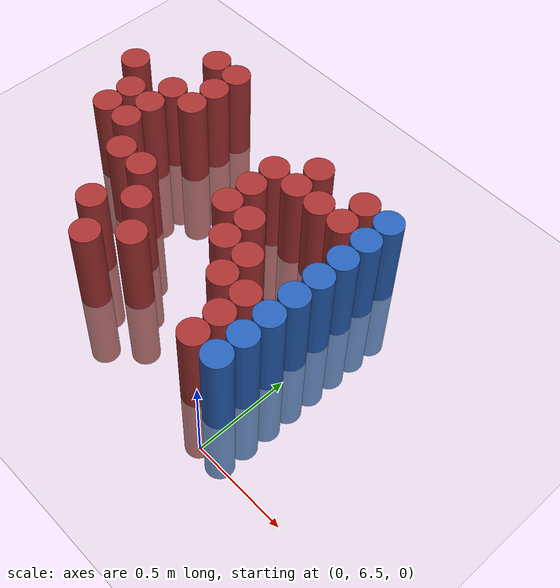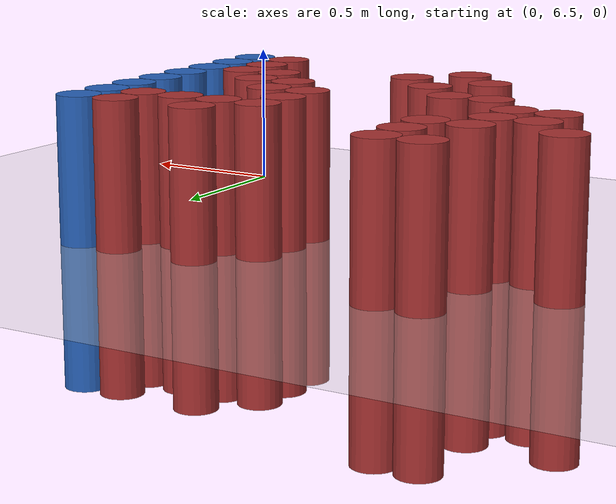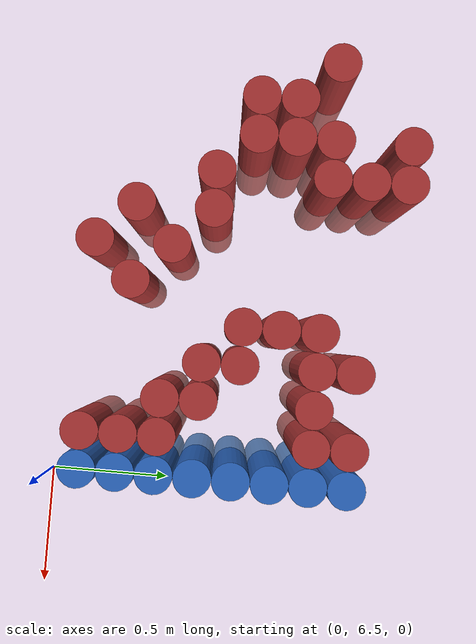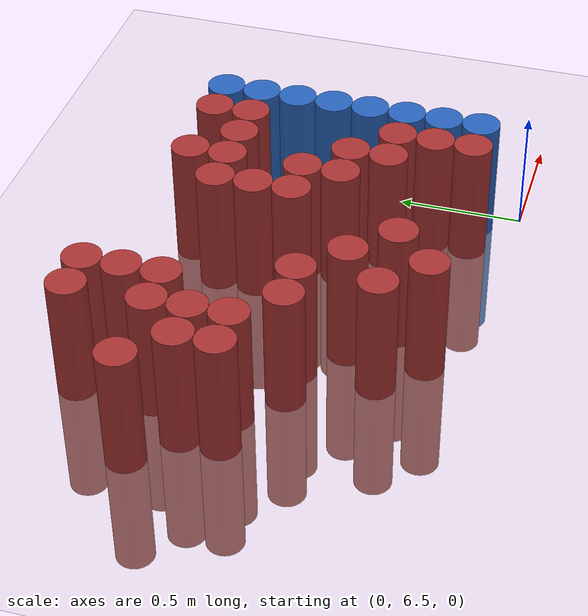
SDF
<sdf version="1.6">
 <world name="default">
  <model name="ground_plane">
   <static>1</static>
   <link name="link">
    <collision name="collision">
     <geometry><plane><normal>0 0 1</normal><size>100 100</size></plane></geometry>
     <surface><friction><ode><mu>100</mu><mu2>50</mu2></ode></friction></surface>
    </collision>
    <visual name="visual">
     <cast_shadows>0</cast_shadows>
     <geometry><plane><normal>0 0 1</normal><size>100 100</size></plane></geometry>
     <material>
      <script><uri>file://media/materials/scripts/gazebo.material</uri><name>Gazebo/Grey</name></script>
     </material>
    </visual>
   </link>
  </model>
  <model name="unit_cylinder_210">
   <static>1</static>
   <pose>-1.725000 7.575000 0.000000 0.000000 0.000000 0.000000</pose>
   <link name="link">
    <inertial>
     <mass>1</mass>
     <inertia><ixx>0.145833</ixx><ixy>0</ixy><ixz>0</ixz><iyy>0.145833</iyy><iyz>0</iyz><izz>0.125</izz></inertia>
    </inertial>
    <collision name="collision">
     <geometry><cylinder><radius>0.075000</radius><length>1</length></cylinder></geometry>
    </collision>
    <visual name="visual">
     <geometry><cylinder><radius>0.075000</radius><length>1</length></cylinder></geometry>
     <material>
      <ambient>0.648000 0.192000 0.192000 1</ambient>
      <diffuse>0.648000 0.192000 0.192000 1</diffuse>
     </material>
     <material>
      <script><name>Gazebo/Grey</name><uri>file://media/materials/scripts/gazebo.material</uri></script>
     </material>
    </visual>
    <sensor name="sensor_contact" type="contact"><contact><collision>collision</collision></contact></sensor>
   </link>
   <plugin filename="gz-sim-touchplugin-system" name="gz::sim::systems::TouchPlugin">
    <target>robot</target>
    <namespace>robot</namespace>
    <time>0.001</time>
    <enabled>true</enabled>
   </plugin>
  </model>
  <model name="unit_cylinder_217">
   <static>1</static>
   <pose>-1.575000 7.275000 0.000000 0.000000 0.000000 0.000000</pose>
   <link name="link">
    <inertial>
     <mass>1</mass>
     <inertia><ixx>0.145833</ixx><ixy>0</ixy><ixz>0</ixz><iyy>0.145833</iyy><iyz>0</iyz><izz>0.125</izz></inertia>
    </inertial>
    <collision name="collision">
     <geometry><cylinder><radius>0.075000</radius><length>1</length></cylinder></geometry>
    </collision>
    <visual name="visual">
     <geometry><cylinder><radius>0.075000</radius><length>1</length></cylinder></geometry>
     <material>
      <ambient>0.648000 0.192000 0.192000 1</ambient>
      <diffuse>0.648000 0.192000 0.192000 1</diffuse>
     </material>
     <material>
      <script><name>Gazebo/Grey</name><uri>file://media/materials/scripts/gazebo.material</uri></script>
     </material>
    </visual>
    <sensor name="sensor_contact" type="contact"><contact><collision>collision</collision></contact></sensor>
   </link>
   <plugin filename="gz-sim-touchplugin-system" name="gz::sim::systems::TouchPlugin">
    <target>robot</target>
    <namespace>robot</namespace>
    <time>0.001</time>
    <enabled>true</enabled>
   </plugin>
  </model>
  <model name="unit_cylinder_218">
   <static>1</static>
   <pose>-1.575000 7.425000 0.000000 0.000000 0.000000 0.000000</pose>
   <link name="link">
    <inertial>
     <mass>1</mass>
     <inertia><ixx>0.145833</ixx><ixy>0</ixy><ixz>0</ixz><iyy>0.145833</iyy><iyz>0</iyz><izz>0.125</izz></inertia>
    </inertial>
    <collision name="collision">
     <geometry><cylinder><radius>0.075000</radius><length>1</length></cylinder></geometry>
    </collision>
    <visual name="visual">
     <geometry><cylinder><radius>0.075000</radius><length>1</length></cylinder></geometry>
     <material>
      <ambient>0.648000 0.192000 0.192000 1</ambient>
      <diffuse>0.648000 0.192000 0.192000 1</diffuse>
     </material>
     <material>
      <script><name>Gazebo/Grey</name><uri>file://media/materials/scripts/gazebo.material</uri></script>
     </material>
    </visual>
    <sensor name="sensor_contact" type="contact"><contact><collision>collision</collision></contact></sensor>
   </link>
   <plugin filename="gz-sim-touchplugin-system" name="gz::sim::systems::TouchPlugin">
    <target>robot</target>
    <namespace>robot</namespace>
    <time>0.001</time>
    <enabled>true</enabled>
   </plugin>
  </model>
  <model name="unit_cylinder_222">
   <static>1</static>
   <pose>-1.425000 7.275000 0.000000 0.000000 0.000000 0.000000</pose>
   <link name="link">
    <inertial>
     <mass>1</mass>
     <inertia><ixx>0.145833</ixx><ixy>0</ixy><ixz>0</ixz><iyy>0.145833</iyy><iyz>0</iyz><izz>0.125</izz></inertia>
    </inertial>
    <collision name="collision">
     <geometry><cylinder><radius>0.075000</radius><length>1</length></cylinder></geometry>
    </collision>
    <visual name="visual">
     <geometry><cylinder><radius>0.075000</radius><length>1</length></cylinder></geometry>
     <material>
      <ambient>0.648000 0.192000 0.192000 1</ambient>
      <diffuse>0.648000 0.192000 0.192000 1</diffuse>
     </material>
     <material>
      <script><name>Gazebo/Grey</name><uri>file://media/materials/scripts/gazebo.material</uri></script>
     </material>
    </visual>
    <sensor name="sensor_contact" type="contact"><contact><collision>collision</collision></contact></sensor>
   </link>
   <plugin filename="gz-sim-touchplugin-system" name="gz::sim::systems::TouchPlugin">
    <target>robot</target>
    <namespace>robot</namespace>
    <time>0.001</time>
    <enabled>true</enabled>
   </plugin>
  </model>
  <model name="unit_cylinder_223">
   <static>1</static>
   <pose>-1.425000 7.425000 0.000000 0.000000 0.000000 0.000000</pose>
   <link name="link">
    <inertial>
     <mass>1</mass>
     <inertia><ixx>0.145833</ixx><ixy>0</ixy><ixz>0</ixz><iyy>0.145833</iyy><iyz>0</iyz><izz>0.125</izz></inertia>
    </inertial>
    <collision name="collision">
     <geometry><cylinder><radius>0.075000</radius><length>1</length></cylinder></geometry>
    </collision>
    <visual name="visual">
     <geometry><cylinder><radius>0.075000</radius><length>1</length></cylinder></geometry>
     <material>
      <ambient>0.648000 0.192000 0.192000 1</ambient>
      <diffuse>0.648000 0.192000 0.192000 1</diffuse>
     </material>
     <material>
      <script><name>Gazebo/Grey</name><uri>file://media/materials/scripts/gazebo.material</uri></script>
     </material>
    </visual>
    <sensor name="sensor_contact" type="contact"><contact><collision>collision</collision></contact></sensor>
   </link>
   <plugin filename="gz-sim-touchplugin-system" name="gz::sim::systems::TouchPlugin">
    <target>robot</target>
    <namespace>robot</namespace>
    <time>0.001</time>
    <enabled>true</enabled>
   </plugin>
  </model>
  <model name="unit_cylinder_224">
   <static>1</static>
   <pose>-1.425000 7.575000 0.000000 0.000000 0.000000 0.000000</pose>
   <link name="link">
    <inertial>
     <mass>1</mass>
     <inertia><ixx>0.145833</ixx><ixy>0</ixy><ixz>0</ixz><iyy>0.145833</iyy><iyz>0</iyz><izz>0.125</izz></inertia>
    </inertial>
    <collision name="collision">
     <geometry><cylinder><radius>0.075000</radius><length>1</length></cylinder></geometry>
    </collision>
    <visual name="visual">
     <geometry><cylinder><radius>0.075000</radius><length>1</length></cylinder></geometry>
     <material>
      <ambient>0.648000 0.192000 0.192000 1</ambient>
      <diffuse>0.648000 0.192000 0.192000 1</diffuse>
     </material>
     <material>
      <script><name>Gazebo/Grey</name><uri>file://media/materials/scripts/gazebo.material</uri></script>
     </material>
    </visual>
    <sensor name="sensor_contact" type="contact"><contact><collision>collision</collision></contact></sensor>
   </link>
   <plugin filename="gz-sim-touchplugin-system" name="gz::sim::systems::TouchPlugin">
    <target>robot</target>
    <namespace>robot</namespace>
    <time>0.001</time>
    <enabled>true</enabled>
   </plugin>
  </model>
  <model name="unit_cylinder_225">
   <static>1</static>
   <pose>-1.425000 7.875000 0.000000 0.000000 0.000000 0.000000</pose>
   <link name="link">
    <inertial>
     <mass>1</mass>
     <inertia><ixx>0.145833</ixx><ixy>0</ixy><ixz>0</ixz><iyy>0.145833</iyy><iyz>0</iyz><izz>0.125</izz></inertia>
    </inertial>
    <collision name="collision">
     <geometry><cylinder><radius>0.075000</radius><length>1</length></cylinder></geometry>
    </collision>
    <visual name="visual">
     <geometry><cylinder><radius>0.075000</radius><length>1</length></cylinder></geometry>
     <material>
      <ambient>0.648000 0.192000 0.192000 1</ambient>
      <diffuse>0.648000 0.192000 0.192000 1</diffuse>
     </material>
     <material>
      <script><name>Gazebo/Grey</name><uri>file://media/materials/scripts/gazebo.material</uri></script>
     </material>
    </visual>
    <sensor name="sensor_contact" type="contact"><contact><collision>collision</collision></contact></sensor>
   </link>
   <plugin filename="gz-sim-touchplugin-system" name="gz::sim::systems::TouchPlugin">
    <target>robot</target>
    <namespace>robot</namespace>
    <time>0.001</time>
    <enabled>true</enabled>
   </plugin>
  </model>
  <model name="unit_cylinder_227">
   <static>1</static>
   <pose>-1.275000 7.125000 0.000000 0.000000 0.000000 0.000000</pose>
   <link name="link">
    <inertial>
     <mass>1</mass>
     <inertia><ixx>0.145833</ixx><ixy>0</ixy><ixz>0</ixz><iyy>0.145833</iyy><iyz>0</iyz><izz>0.125</izz></inertia>
    </inertial>
    <collision name="collision">
     <geometry><cylinder><radius>0.075000</radius><length>1</length></cylinder></geometry>
    </collision>
    <visual name="visual">
     <geometry><cylinder><radius>0.075000</radius><length>1</length></cylinder></geometry>
     <material>
      <ambient>0.648000 0.192000 0.192000 1</ambient>
      <diffuse>0.648000 0.192000 0.192000 1</diffuse>
     </material>
     <material>
      <script><name>Gazebo/Grey</name><uri>file://media/materials/scripts/gazebo.material</uri></script>
     </material>
    </visual>
    <sensor name="sensor_contact" type="contact"><contact><collision>collision</collision></contact></sensor>
   </link>
   <plugin filename="gz-sim-touchplugin-system" name="gz::sim::systems::TouchPlugin">
    <target>robot</target>
    <namespace>robot</namespace>
    <time>0.001</time>
    <enabled>true</enabled>
   </plugin>
  </model>
  <model name="unit_cylinder_228">
   <static>1</static>
   <pose>-1.275000 7.575000 0.000000 0.000000 0.000000 0.000000</pose>
   <link name="link">
    <inertial>
     <mass>1</mass>
     <inertia><ixx>0.145833</ixx><ixy>0</ixy><ixz>0</ixz><iyy>0.145833</iyy><iyz>0</iyz><izz>0.125</izz></inertia>
    </inertial>
    <collision name="collision">
     <geometry><cylinder><radius>0.075000</radius><length>1</length></cylinder></geometry>
    </collision>
    <visual name="visual">
     <geometry><cylinder><radius>0.075000</radius><length>1</length></cylinder></geometry>
     <material>
      <ambient>0.648000 0.192000 0.192000 1</ambient>
      <diffuse>0.648000 0.192000 0.192000 1</diffuse>
     </material>
     <material>
      <script><name>Gazebo/Grey</name><uri>file://media/materials/scripts/gazebo.material</uri></script>
     </material>
    </visual>
    <sensor name="sensor_contact" type="contact"><contact><collision>collision</collision></contact></sensor>
   </link>
   <plugin filename="gz-sim-touchplugin-system" name="gz::sim::systems::TouchPlugin">
    <target>robot</target>
    <namespace>robot</namespace>
    <time>0.001</time>
    <enabled>true</enabled>
   </plugin>
  </model>
  <model name="unit_cylinder_229">
   <static>1</static>
   <pose>-1.275000 7.725000 0.000000 0.000000 0.000000 0.000000</pose>
   <link name="link">
    <inertial>
     <mass>1</mass>
     <inertia><ixx>0.145833</ixx><ixy>0</ixy><ixz>0</ixz><iyy>0.145833</iyy><iyz>0</iyz><izz>0.125</izz></inertia>
    </inertial>
    <collision name="collision">
     <geometry><cylinder><radius>0.075000</radius><length>1</length></cylinder></geometry>
    </collision>
    <visual name="visual">
     <geometry><cylinder><radius>0.075000</radius><length>1</length></cylinder></geometry>
     <material>
      <ambient>0.648000 0.192000 0.192000 1</ambient>
      <diffuse>0.648000 0.192000 0.192000 1</diffuse>
     </material>
     <material>
      <script><name>Gazebo/Grey</name><uri>file://media/materials/scripts/gazebo.material</uri></script>
     </material>
    </visual>
    <sensor name="sensor_contact" type="contact"><contact><collision>collision</collision></contact></sensor>
   </link>
   <plugin filename="gz-sim-touchplugin-system" name="gz::sim::systems::TouchPlugin">
    <target>robot</target>
    <namespace>robot</namespace>
    <time>0.001</time>
    <enabled>true</enabled>
   </plugin>
  </model>
  <model name="unit_cylinder_230">
   <static>1</static>
   <pose>-1.275000 7.875000 0.000000 0.000000 0.000000 0.000000</pose>
   <link name="link">
    <inertial>
     <mass>1</mass>
     <inertia><ixx>0.145833</ixx><ixy>0</ixy><ixz>0</ixz><iyy>0.145833</iyy><iyz>0</iyz><izz>0.125</izz></inertia>
    </inertial>
    <collision name="collision">
     <geometry><cylinder><radius>0.075000</radius><length>1</length></cylinder></geometry>
    </collision>
    <visual name="visual">
     <geometry><cylinder><radius>0.075000</radius><length>1</length></cylinder></geometry>
     <material>
      <ambient>0.648000 0.192000 0.192000 1</ambient>
      <diffuse>0.648000 0.192000 0.192000 1</diffuse>
     </material>
     <material>
      <script><name>Gazebo/Grey</name><uri>file://media/materials/scripts/gazebo.material</uri></script>
     </material>
    </visual>
    <sensor name="sensor_contact" type="contact"><contact><collision>collision</collision></contact></sensor>
   </link>
   <plugin filename="gz-sim-touchplugin-system" name="gz::sim::systems::TouchPlugin">
    <target>robot</target>
    <namespace>robot</namespace>
    <time>0.001</time>
    <enabled>true</enabled>
   </plugin>
  </model>
  <model name="unit_cylinder_233">
   <static>1</static>
   <pose>-1.125000 6.825000 0.000000 0.000000 0.000000 0.000000</pose>
   <link name="link">
    <inertial>
     <mass>1</mass>
     <inertia><ixx>0.145833</ixx><ixy>0</ixy><ixz>0</ixz><iyy>0.145833</iyy><iyz>0</iyz><izz>0.125</izz></inertia>
    </inertial>
    <collision name="collision">
     <geometry><cylinder><radius>0.075000</radius><length>1</length></cylinder></geometry>
    </collision>
    <visual name="visual">
     <geometry><cylinder><radius>0.075000</radius><length>1</length></cylinder></geometry>
     <material>
      <ambient>0.648000 0.192000 0.192000 1</ambient>
      <diffuse>0.648000 0.192000 0.192000 1</diffuse>
     </material>
     <material>
      <script><name>Gazebo/Grey</name><uri>file://media/materials/scripts/gazebo.material</uri></script>
     </material>
    </visual>
    <sensor name="sensor_contact" type="contact"><contact><collision>collision</collision></contact></sensor>
   </link>
   <plugin filename="gz-sim-touchplugin-system" name="gz::sim::systems::TouchPlugin">
    <target>robot</target>
    <namespace>robot</namespace>
    <time>0.001</time>
    <enabled>true</enabled>
   </plugin>
  </model>
  <model name="unit_cylinder_234">
   <static>1</static>
   <pose>-1.125000 7.125000 0.000000 0.000000 0.000000 0.000000</pose>
   <link name="link">
    <inertial>
     <mass>1</mass>
     <inertia><ixx>0.145833</ixx><ixy>0</ixy><ixz>0</ixz><iyy>0.145833</iyy><iyz>0</iyz><izz>0.125</izz></inertia>
    </inertial>
    <collision name="collision">
     <geometry><cylinder><radius>0.075000</radius><length>1</length></cylinder></geometry>
    </collision>
    <visual name="visual">
     <geometry><cylinder><radius>0.075000</radius><length>1</length></cylinder></geometry>
     <material>
      <ambient>0.648000 0.192000 0.192000 1</ambient>
      <diffuse>0.648000 0.192000 0.192000 1</diffuse>
     </material>
     <material>
      <script><name>Gazebo/Grey</name><uri>file://media/materials/scripts/gazebo.material</uri></script>
     </material>
    </visual>
    <sensor name="sensor_contact" type="contact"><contact><collision>collision</collision></contact></sensor>
   </link>
   <plugin filename="gz-sim-touchplugin-system" name="gz::sim::systems::TouchPlugin">
    <target>robot</target>
    <namespace>robot</namespace>
    <time>0.001</time>
    <enabled>true</enabled>
   </plugin>
  </model>
  <model name="unit_cylinder_239">
   <static>1</static>
   <pose>-0.975000 6.675000 0.000000 0.000000 0.000000 0.000000</pose>
   <link name="link">
    <inertial>
     <mass>1</mass>
     <inertia><ixx>0.145833</ixx><ixy>0</ixy><ixz>0</ixz><iyy>0.145833</iyy><iyz>0</iyz><izz>0.125</izz></inertia>
    </inertial>
    <collision name="collision">
     <geometry><cylinder><radius>0.075000</radius><length>1</length></cylinder></geometry>
    </collision>
    <visual name="visual">
     <geometry><cylinder><radius>0.075000</radius><length>1</length></cylinder></geometry>
     <material>
      <ambient>0.648000 0.192000 0.192000 1</ambient>
      <diffuse>0.648000 0.192000 0.192000 1</diffuse>
     </material>
     <material>
      <script><name>Gazebo/Grey</name><uri>file://media/materials/scripts/gazebo.material</uri></script>
     </material>
    </visual>
    <sensor name="sensor_contact" type="contact"><contact><collision>collision</collision></contact></sensor>
   </link>
   <plugin filename="gz-sim-touchplugin-system" name="gz::sim::systems::TouchPlugin">
    <target>robot</target>
    <namespace>robot</namespace>
    <time>0.001</time>
    <enabled>true</enabled>
   </plugin>
  </model>
  <model name="unit_cylinder_240">
   <static>1</static>
   <pose>-0.975000 6.975000 0.000000 0.000000 0.000000 0.000000</pose>
   <link name="link">
    <inertial>
     <mass>1</mass>
     <inertia><ixx>0.145833</ixx><ixy>0</ixy><ixz>0</ixz><iyy>0.145833</iyy><iyz>0</iyz><izz>0.125</izz></inertia>
    </inertial>
    <collision name="collision">
     <geometry><cylinder><radius>0.075000</radius><length>1</length></cylinder></geometry>
    </collision>
    <visual name="visual">
     <geometry><cylinder><radius>0.075000</radius><length>1</length></cylinder></geometry>
     <material>
      <ambient>0.648000 0.192000 0.192000 1</ambient>
      <diffuse>0.648000 0.192000 0.192000 1</diffuse>
     </material>
     <material>
      <script><name>Gazebo/Grey</name><uri>file://media/materials/scripts/gazebo.material</uri></script>
     </material>
    </visual>
    <sensor name="sensor_contact" type="contact"><contact><collision>collision</collision></contact></sensor>
   </link>
   <plugin filename="gz-sim-touchplugin-system" name="gz::sim::systems::TouchPlugin">
    <target>robot</target>
    <namespace>robot</namespace>
    <time>0.001</time>
    <enabled>true</enabled>
   </plugin>
  </model>
  <model name="unit_cylinder_244">
   <static>1</static>
   <pose>-0.825000 6.825000 0.000000 0.000000 0.000000 0.000000</pose>
   <link name="link">
    <inertial>
     <mass>1</mass>
     <inertia><ixx>0.145833</ixx><ixy>0</ixy><ixz>0</ixz><iyy>0.145833</iyy><iyz>0</iyz><izz>0.125</izz></inertia>
    </inertial>
    <collision name="collision">
     <geometry><cylinder><radius>0.075000</radius><length>1</length></cylinder></geometry>
    </collision>
    <visual name="visual">
     <geometry><cylinder><radius>0.075000</radius><length>1</length></cylinder></geometry>
     <material>
      <ambient>0.648000 0.192000 0.192000 1</ambient>
      <diffuse>0.648000 0.192000 0.192000 1</diffuse>
     </material>
     <material>
      <script><name>Gazebo/Grey</name><uri>file://media/materials/scripts/gazebo.material</uri></script>
     </material>
    </visual>
    <sensor name="sensor_contact" type="contact"><contact><collision>collision</collision></contact></sensor>
   </link>
   <plugin filename="gz-sim-touchplugin-system" name="gz::sim::systems::TouchPlugin">
    <target>robot</target>
    <namespace>robot</namespace>
    <time>0.001</time>
    <enabled>true</enabled>
   </plugin>
  </model>
  <model name="unit_cylinder_250">
   <static>1</static>
   <pose>-0.675000 7.275000 0.000000 0.000000 0.000000 0.000000</pose>
   <link name="link">
    <inertial>
     <mass>1</mass>
     <inertia><ixx>0.145833</ixx><ixy>0</ixy><ixz>0</ixz><iyy>0.145833</iyy><iyz>0</iyz><izz>0.125</izz></inertia>
    </inertial>
    <collision name="collision">
     <geometry><cylinder><radius>0.075000</radius><length>1</length></cylinder></geometry>
    </collision>
    <visual name="visual">
     <geometry><cylinder><radius>0.075000</radius><length>1</length></cylinder></geometry>
     <material>
      <ambient>0.648000 0.192000 0.192000 1</ambient>
      <diffuse>0.648000 0.192000 0.192000 1</diffuse>
     </material>
     <material>
      <script><name>Gazebo/Grey</name><uri>file://media/materials/scripts/gazebo.material</uri></script>
     </material>
    </visual>
    <sensor name="sensor_contact" type="contact"><contact><collision>collision</collision></contact></sensor>
   </link>
   <plugin filename="gz-sim-touchplugin-system" name="gz::sim::systems::TouchPlugin">
    <target>robot</target>
    <namespace>robot</namespace>
    <time>0.001</time>
    <enabled>true</enabled>
   </plugin>
  </model>
  <model name="unit_cylinder_251">
   <static>1</static>
   <pose>-0.675000 7.425000 0.000000 0.000000 0.000000 0.000000</pose>
   <link name="link">
    <inertial>
     <mass>1</mass>
     <inertia><ixx>0.145833</ixx><ixy>0</ixy><ixz>0</ixz><iyy>0.145833</iyy><iyz>0</iyz><izz>0.125</izz></inertia>
    </inertial>
    <collision name="collision">
     <geometry><cylinder><radius>0.075000</radius><length>1</length></cylinder></geometry>
    </collision>
    <visual name="visual">
     <geometry><cylinder><radius>0.075000</radius><length>1</length></cylinder></geometry>
     <material>
      <ambient>0.648000 0.192000 0.192000 1</ambient>
      <diffuse>0.648000 0.192000 0.192000 1</diffuse>
     </material>
     <material>
      <script><name>Gazebo/Grey</name><uri>file://media/materials/scripts/gazebo.material</uri></script>
     </material>
    </visual>
    <sensor name="sensor_contact" type="contact"><contact><collision>collision</collision></contact></sensor>
   </link>
   <plugin filename="gz-sim-touchplugin-system" name="gz::sim::systems::TouchPlugin">
    <target>robot</target>
    <namespace>robot</namespace>
    <time>0.001</time>
    <enabled>true</enabled>
   </plugin>
  </model>
  <model name="unit_cylinder_252">
   <static>1</static>
   <pose>-0.675000 7.575000 0.000000 0.000000 0.000000 0.000000</pose>
   <link name="link">
    <inertial>
     <mass>1</mass>
     <inertia><ixx>0.145833</ixx><ixy>0</ixy><ixz>0</ixz><iyy>0.145833</iyy><iyz>0</iyz><izz>0.125</izz></inertia>
    </inertial>
    <collision name="collision">
     <geometry><cylinder><radius>0.075000</radius><length>1</length></cylinder></geometry>
    </collision>
    <visual name="visual">
     <geometry><cylinder><radius>0.075000</radius><length>1</length></cylinder></geometry>
     <material>
      <ambient>0.648000 0.192000 0.192000 1</ambient>
      <diffuse>0.648000 0.192000 0.192000 1</diffuse>
     </material>
     <material>
      <script><name>Gazebo/Grey</name><uri>file://media/materials/scripts/gazebo.material</uri></script>
     </material>
    </visual>
    <sensor name="sensor_contact" type="contact"><contact><collision>collision</collision></contact></sensor>
   </link>
   <plugin filename="gz-sim-touchplugin-system" name="gz::sim::systems::TouchPlugin">
    <target>robot</target>
    <namespace>robot</namespace>
    <time>0.001</time>
    <enabled>true</enabled>
   </plugin>
  </model>
  <model name="unit_cylinder_258">
   <static>1</static>
   <pose>-0.525000 7.125000 0.000000 0.000000 0.000000 0.000000</pose>
   <link name="link">
    <inertial>
     <mass>1</mass>
     <inertia><ixx>0.145833</ixx><ixy>0</ixy><ixz>0</ixz><iyy>0.145833</iyy><iyz>0</iyz><izz>0.125</izz></inertia>
    </inertial>
    <collision name="collision">
     <geometry><cylinder><radius>0.075000</radius><length>1</length></cylinder></geometry>
    </collision>
    <visual name="visual">
     <geometry><cylinder><radius>0.075000</radius><length>1</length></cylinder></geometry>
     <material>
      <ambient>0.648000 0.192000 0.192000 1</ambient>
      <diffuse>0.648000 0.192000 0.192000 1</diffuse>
     </material>
     <material>
      <script><name>Gazebo/Grey</name><uri>file://media/materials/scripts/gazebo.material</uri></script>
     </material>
    </visual>
    <sensor name="sensor_contact" type="contact"><contact><collision>collision</collision></contact></sensor>
   </link>
   <plugin filename="gz-sim-touchplugin-system" name="gz::sim::systems::TouchPlugin">
    <target>robot</target>
    <namespace>robot</namespace>
    <time>0.001</time>
    <enabled>true</enabled>
   </plugin>
  </model>
  <model name="unit_cylinder_259">
   <static>1</static>
   <pose>-0.525000 7.275000 0.000000 0.000000 0.000000 0.000000</pose>
   <link name="link">
    <inertial>
     <mass>1</mass>
     <inertia><ixx>0.145833</ixx><ixy>0</ixy><ixz>0</ixz><iyy>0.145833</iyy><iyz>0</iyz><izz>0.125</izz></inertia>
    </inertial>
    <collision name="collision">
     <geometry><cylinder><radius>0.075000</radius><length>1</length></cylinder></geometry>
    </collision>
    <visual name="visual">
     <geometry><cylinder><radius>0.075000</radius><length>1</length></cylinder></geometry>
     <material>
      <ambient>0.648000 0.192000 0.192000 1</ambient>
      <diffuse>0.648000 0.192000 0.192000 1</diffuse>
     </material>
     <material>
      <script><name>Gazebo/Grey</name><uri>file://media/materials/scripts/gazebo.material</uri></script>
     </material>
    </visual>
    <sensor name="sensor_contact" type="contact"><contact><collision>collision</collision></contact></sensor>
   </link>
   <plugin filename="gz-sim-touchplugin-system" name="gz::sim::systems::TouchPlugin">
    <target>robot</target>
    <namespace>robot</namespace>
    <time>0.001</time>
    <enabled>true</enabled>
   </plugin>
  </model>
  <model name="unit_cylinder_260">
   <static>1</static>
   <pose>-0.525000 7.575000 0.000000 0.000000 0.000000 0.000000</pose>
   <link name="link">
    <inertial>
     <mass>1</mass>
     <inertia><ixx>0.145833</ixx><ixy>0</ixy><ixz>0</ixz><iyy>0.145833</iyy><iyz>0</iyz><izz>0.125</izz></inertia>
    </inertial>
    <collision name="collision">
     <geometry><cylinder><radius>0.075000</radius><length>1</length></cylinder></geometry>
    </collision>
    <visual name="visual">
     <geometry><cylinder><radius>0.075000</radius><length>1</length></cylinder></geometry>
     <material>
      <ambient>0.648000 0.192000 0.192000 1</ambient>
      <diffuse>0.648000 0.192000 0.192000 1</diffuse>
     </material>
     <material>
      <script><name>Gazebo/Grey</name><uri>file://media/materials/scripts/gazebo.material</uri></script>
     </material>
    </visual>
    <sensor name="sensor_contact" type="contact"><contact><collision>collision</collision></contact></sensor>
   </link>
   <plugin filename="gz-sim-touchplugin-system" name="gz::sim::systems::TouchPlugin">
    <target>robot</target>
    <namespace>robot</namespace>
    <time>0.001</time>
    <enabled>true</enabled>
   </plugin>
  </model>
  <model name="unit_cylinder_261">
   <static>1</static>
   <pose>-0.525000 7.725000 0.000000 0.000000 0.000000 0.000000</pose>
   <link name="link">
    <inertial>
     <mass>1</mass>
     <inertia><ixx>0.145833</ixx><ixy>0</ixy><ixz>0</ixz><iyy>0.145833</iyy><iyz>0</iyz><izz>0.125</izz></inertia>
    </inertial>
    <collision name="collision">
     <geometry><cylinder><radius>0.075000</radius><length>1</length></cylinder></geometry>
    </collision>
    <visual name="visual">
     <geometry><cylinder><radius>0.075000</radius><length>1</length></cylinder></geometry>
     <material>
      <ambient>0.648000 0.192000 0.192000 1</ambient>
      <diffuse>0.648000 0.192000 0.192000 1</diffuse>
     </material>
     <material>
      <script><name>Gazebo/Grey</name><uri>file://media/materials/scripts/gazebo.material</uri></script>
     </material>
    </visual>
    <sensor name="sensor_contact" type="contact"><contact><collision>collision</collision></contact></sensor>
   </link>
   <plugin filename="gz-sim-touchplugin-system" name="gz::sim::systems::TouchPlugin">
    <target>robot</target>
    <namespace>robot</namespace>
    <time>0.001</time>
    <enabled>true</enabled>
   </plugin>
  </model>
  <model name="unit_cylinder_267">
   <static>1</static>
   <pose>-0.375000 6.975000 0.000000 0.000000 0.000000 0.000000</pose>
   <link name="link">
    <inertial>
     <mass>1</mass>
     <inertia><ixx>0.145833</ixx><ixy>0</ixy><ixz>0</ixz><iyy>0.145833</iyy><iyz>0</iyz><izz>0.125</izz></inertia>
    </inertial>
    <collision name="collision">
     <geometry><cylinder><radius>0.075000</radius><length>1</length></cylinder></geometry>
    </collision>
    <visual name="visual">
     <geometry><cylinder><radius>0.075000</radius><length>1</length></cylinder></geometry>
     <material>
      <ambient>0.648000 0.192000 0.192000 1</ambient>
      <diffuse>0.648000 0.192000 0.192000 1</diffuse>
     </material>
     <material>
      <script><name>Gazebo/Grey</name><uri>file://media/materials/scripts/gazebo.material</uri></script>
     </material>
    </visual>
    <sensor name="sensor_contact" type="contact"><contact><collision>collision</collision></contact></sensor>
   </link>
   <plugin filename="gz-sim-touchplugin-system" name="gz::sim::systems::TouchPlugin">
    <target>robot</target>
    <namespace>robot</namespace>
    <time>0.001</time>
    <enabled>true</enabled>
   </plugin>
  </model>
  <model name="unit_cylinder_268">
   <static>1</static>
   <pose>-0.375000 7.125000 0.000000 0.000000 0.000000 0.000000</pose>
   <link name="link">
    <inertial>
     <mass>1</mass>
     <inertia><ixx>0.145833</ixx><ixy>0</ixy><ixz>0</ixz><iyy>0.145833</iyy><iyz>0</iyz><izz>0.125</izz></inertia>
    </inertial>
    <collision name="collision">
     <geometry><cylinder><radius>0.075000</radius><length>1</length></cylinder></geometry>
    </collision>
    <visual name="visual">
     <geometry><cylinder><radius>0.075000</radius><length>1</length></cylinder></geometry>
     <material>
      <ambient>0.648000 0.192000 0.192000 1</ambient>
      <diffuse>0.648000 0.192000 0.192000 1</diffuse>
     </material>
     <material>
      <script><name>Gazebo/Grey</name><uri>file://media/materials/scripts/gazebo.material</uri></script>
     </material>
    </visual>
    <sensor name="sensor_contact" type="contact"><contact><collision>collision</collision></contact></sensor>
   </link>
   <plugin filename="gz-sim-touchplugin-system" name="gz::sim::systems::TouchPlugin">
    <target>robot</target>
    <namespace>robot</namespace>
    <time>0.001</time>
    <enabled>true</enabled>
   </plugin>
  </model>
  <model name="unit_cylinder_269">
   <static>1</static>
   <pose>-0.375000 7.575000 0.000000 0.000000 0.000000 0.000000</pose>
   <link name="link">
    <inertial>
     <mass>1</mass>
     <inertia><ixx>0.145833</ixx><ixy>0</ixy><ixz>0</ixz><iyy>0.145833</iyy><iyz>0</iyz><izz>0.125</izz></inertia>
    </inertial>
    <collision name="collision">
     <geometry><cylinder><radius>0.075000</radius><length>1</length></cylinder></geometry>
    </collision>
    <visual name="visual">
     <geometry><cylinder><radius>0.075000</radius><length>1</length></cylinder></geometry>
     <material>
      <ambient>0.648000 0.192000 0.192000 1</ambient>
      <diffuse>0.648000 0.192000 0.192000 1</diffuse>
     </material>
     <material>
      <script><name>Gazebo/Grey</name><uri>file://media/materials/scripts/gazebo.material</uri></script>
     </material>
    </visual>
    <sensor name="sensor_contact" type="contact"><contact><collision>collision</collision></contact></sensor>
   </link>
   <plugin filename="gz-sim-touchplugin-system" name="gz::sim::systems::TouchPlugin">
    <target>robot</target>
    <namespace>robot</namespace>
    <time>0.001</time>
    <enabled>true</enabled>
   </plugin>
  </model>
  <model name="unit_cylinder_278">
   <static>1</static>
   <pose>-0.225000 6.675000 0.000000 0.000000 0.000000 0.000000</pose>
   <link name="link">
    <inertial>
     <mass>1</mass>
     <inertia><ixx>0.145833</ixx><ixy>0</ixy><ixz>0</ixz><iyy>0.145833</iyy><iyz>0</iyz><izz>0.125</izz></inertia>
    </inertial>
    <collision name="collision">
     <geometry><cylinder><radius>0.075000</radius><length>1</length></cylinder></geometry>
    </collision>
    <visual name="visual">
     <geometry><cylinder><radius>0.075000</radius><length>1</length></cylinder></geometry>
     <material>
      <ambient>0.648000 0.192000 0.192000 1</ambient>
      <diffuse>0.648000 0.192000 0.192000 1</diffuse>
     </material>
     <material>
      <script><name>Gazebo/Grey</name><uri>file://media/materials/scripts/gazebo.material</uri></script>
     </material>
    </visual>
    <sensor name="sensor_contact" type="contact"><contact><collision>collision</collision></contact></sensor>
   </link>
   <plugin filename="gz-sim-touchplugin-system" name="gz::sim::systems::TouchPlugin">
    <target>robot</target>
    <namespace>robot</namespace>
    <time>0.001</time>
    <enabled>true</enabled>
   </plugin>
  </model>
  <model name="unit_cylinder_279">
   <static>1</static>
   <pose>-0.225000 6.825000 0.000000 0.000000 0.000000 0.000000</pose>
   <link name="link">
    <inertial>
     <mass>1</mass>
     <inertia><ixx>0.145833</ixx><ixy>0</ixy><ixz>0</ixz><iyy>0.145833</iyy><iyz>0</iyz><izz>0.125</izz></inertia>
    </inertial>
    <collision name="collision">
     <geometry><cylinder><radius>0.075000</radius><length>1</length></cylinder></geometry>
    </collision>
    <visual name="visual">
     <geometry><cylinder><radius>0.075000</radius><length>1</length></cylinder></geometry>
     <material>
      <ambient>0.648000 0.192000 0.192000 1</ambient>
      <diffuse>0.648000 0.192000 0.192000 1</diffuse>
     </material>
     <material>
      <script><name>Gazebo/Grey</name><uri>file://media/materials/scripts/gazebo.material</uri></script>
     </material>
    </visual>
    <sensor name="sensor_contact" type="contact"><contact><collision>collision</collision></contact></sensor>
   </link>
   <plugin filename="gz-sim-touchplugin-system" name="gz::sim::systems::TouchPlugin">
    <target>robot</target>
    <namespace>robot</namespace>
    <time>0.001</time>
    <enabled>true</enabled>
   </plugin>
  </model>
  <model name="unit_cylinder_280">
   <static>1</static>
   <pose>-0.225000 6.975000 0.000000 0.000000 0.000000 0.000000</pose>
   <link name="link">
    <inertial>
     <mass>1</mass>
     <inertia><ixx>0.145833</ixx><ixy>0</ixy><ixz>0</ixz><iyy>0.145833</iyy><iyz>0</iyz><izz>0.125</izz></inertia>
    </inertial>
    <collision name="collision">
     <geometry><cylinder><radius>0.075000</radius><length>1</length></cylinder></geometry>
    </collision>
    <visual name="visual">
     <geometry><cylinder><radius>0.075000</radius><length>1</length></cylinder></geometry>
     <material>
      <ambient>0.648000 0.192000 0.192000 1</ambient>
      <diffuse>0.648000 0.192000 0.192000 1</diffuse>
     </material>
     <material>
      <script><name>Gazebo/Grey</name><uri>file://media/materials/scripts/gazebo.material</uri></script>
     </material>
    </visual>
    <sensor name="sensor_contact" type="contact"><contact><collision>collision</collision></contact></sensor>
   </link>
   <plugin filename="gz-sim-touchplugin-system" name="gz::sim::systems::TouchPlugin">
    <target>robot</target>
    <namespace>robot</namespace>
    <time>0.001</time>
    <enabled>true</enabled>
   </plugin>
  </model>
  <model name="unit_cylinder_281">
   <static>1</static>
   <pose>-0.225000 7.575000 0.000000 0.000000 0.000000 0.000000</pose>
   <link name="link">
    <inertial>
     <mass>1</mass>
     <inertia><ixx>0.145833</ixx><ixy>0</ixy><ixz>0</ixz><iyy>0.145833</iyy><iyz>0</iyz><izz>0.125</izz></inertia>
    </inertial>
    <collision name="collision">
     <geometry><cylinder><radius>0.075000</radius><length>1</length></cylinder></geometry>
    </collision>
    <visual name="visual">
     <geometry><cylinder><radius>0.075000</radius><length>1</length></cylinder></geometry>
     <material>
      <ambient>0.648000 0.192000 0.192000 1</ambient>
      <diffuse>0.648000 0.192000 0.192000 1</diffuse>
     </material>
     <material>
      <script><name>Gazebo/Grey</name><uri>file://media/materials/scripts/gazebo.material</uri></script>
     </material>
    </visual>
    <sensor name="sensor_contact" type="contact"><contact><collision>collision</collision></contact></sensor>
   </link>
   <plugin filename="gz-sim-touchplugin-system" name="gz::sim::systems::TouchPlugin">
    <target>robot</target>
    <namespace>robot</namespace>
    <time>0.001</time>
    <enabled>true</enabled>
   </plugin>
  </model>
  <model name="unit_cylinder_282">
   <static>1</static>
   <pose>-0.225000 7.725000 0.000000 0.000000 0.000000 0.000000</pose>
   <link name="link">
    <inertial>
     <mass>1</mass>
     <inertia><ixx>0.145833</ixx><ixy>0</ixy><ixz>0</ixz><iyy>0.145833</iyy><iyz>0</iyz><izz>0.125</izz></inertia>
    </inertial>
    <collision name="collision">
     <geometry><cylinder><radius>0.075000</radius><length>1</length></cylinder></geometry>
    </collision>
    <visual name="visual">
     <geometry><cylinder><radius>0.075000</radius><length>1</length></cylinder></geometry>
     <material>
      <ambient>0.648000 0.192000 0.192000 1</ambient>
      <diffuse>0.648000 0.192000 0.192000 1</diffuse>
     </material>
     <material>
      <script><name>Gazebo/Grey</name><uri>file://media/materials/scripts/gazebo.material</uri></script>
     </material>
    </visual>
    <sensor name="sensor_contact" type="contact"><contact><collision>collision</collision></contact></sensor>
   </link>
   <plugin filename="gz-sim-touchplugin-system" name="gz::sim::systems::TouchPlugin">
    <target>robot</target>
    <namespace>robot</namespace>
    <time>0.001</time>
    <enabled>true</enabled>
   </plugin>
  </model>
  <model name="unit_cylinder_296">
   <static>1</static>
   <pose>-0.075000 6.675000 0.000000 0.000000 0.000000 0.000000</pose>
   <link name="link">
    <inertial>
     <mass>1</mass>
     <inertia><ixx>0.145833</ixx><ixy>0</ixy><ixz>0</ixz><iyy>0.145833</iyy><iyz>0</iyz><izz>0.125</izz></inertia>
    </inertial>
    <collision name="collision">
     <geometry><cylinder><radius>0.075000</radius><length>1</length></cylinder></geometry>
    </collision>
    <visual name="visual">
     <geometry><cylinder><radius>0.075000</radius><length>1</length></cylinder></geometry>
     <material>
      <ambient>0.152000 0.379000 0.720000 1</ambient>
      <diffuse>0.152000 0.379000 0.720000 1</diffuse>
     </material>
     <material>
      <script><name>Gazebo/Grey</name><uri>file://media/materials/scripts/gazebo.material</uri></script>
     </material>
    </visual>
    <sensor name="sensor_contact" type="contact"><contact><collision>collision</collision></contact></sensor>
   </link>
   <plugin filename="gz-sim-touchplugin-system" name="gz::sim::systems::TouchPlugin">
    <target>robot</target>
    <namespace>robot</namespace>
    <time>0.001</time>
    <enabled>true</enabled>
   </plugin>
  </model>
  <model name="unit_cylinder_297">
   <static>1</static>
   <pose>-0.075000 6.825000 0.000000 0.000000 0.000000 0.000000</pose>
   <link name="link">
    <inertial>
     <mass>1</mass>
     <inertia><ixx>0.145833</ixx><ixy>0</ixy><ixz>0</ixz><iyy>0.145833</iyy><iyz>0</iyz><izz>0.125</izz></inertia>
    </inertial>
    <collision name="collision">
     <geometry><cylinder><radius>0.075000</radius><length>1</length></cylinder></geometry>
    </collision>
    <visual name="visual">
     <geometry><cylinder><radius>0.075000</radius><length>1</length></cylinder></geometry>
     <material>
      <ambient>0.152000 0.379000 0.720000 1</ambient>
      <diffuse>0.152000 0.379000 0.720000 1</diffuse>
     </material>
     <material>
      <script><name>Gazebo/Grey</name><uri>file://media/materials/scripts/gazebo.material</uri></script>
     </material>
    </visual>
    <sensor name="sensor_contact" type="contact"><contact><collision>collision</collision></contact></sensor>
   </link>
   <plugin filename="gz-sim-touchplugin-system" name="gz::sim::systems::TouchPlugin">
    <target>robot</target>
    <namespace>robot</namespace>
    <time>0.001</time>
    <enabled>true</enabled>
   </plugin>
  </model>
  <model name="unit_cylinder_298">
   <static>1</static>
   <pose>-0.075000 6.975000 0.000000 0.000000 0.000000 0.000000</pose>
   <link name="link">
    <inertial>
     <mass>1</mass>
     <inertia><ixx>0.145833</ixx><ixy>0</ixy><ixz>0</ixz><iyy>0.145833</iyy><iyz>0</iyz><izz>0.125</izz></inertia>
    </inertial>
    <collision name="collision">
     <geometry><cylinder><radius>0.075000</radius><length>1</length></cylinder></geometry>
    </collision>
    <visual name="visual">
     <geometry><cylinder><radius>0.075000</radius><length>1</length></cylinder></geometry>
     <material>
      <ambient>0.152000 0.379000 0.720000 1</ambient>
      <diffuse>0.152000 0.379000 0.720000 1</diffuse>
     </material>
     <material>
      <script><name>Gazebo/Grey</name><uri>file://media/materials/scripts/gazebo.material</uri></script>
     </material>
    </visual>
    <sensor name="sensor_contact" type="contact"><contact><collision>collision</collision></contact></sensor>
   </link>
   <plugin filename="gz-sim-touchplugin-system" name="gz::sim::systems::TouchPlugin">
    <target>robot</target>
    <namespace>robot</namespace>
    <time>0.001</time>
    <enabled>true</enabled>
   </plugin>
  </model>
  <model name="unit_cylinder_299">
   <static>1</static>
   <pose>-0.075000 7.125000 0.000000 0.000000 0.000000 0.000000</pose>
   <link name="link">
    <inertial>
     <mass>1</mass>
     <inertia><ixx>0.145833</ixx><ixy>0</ixy><ixz>0</ixz><iyy>0.145833</iyy><iyz>0</iyz><izz>0.125</izz></inertia>
    </inertial>
    <collision name="collision">
     <geometry><cylinder><radius>0.075000</radius><length>1</length></cylinder></geometry>
    </collision>
    <visual name="visual">
     <geometry><cylinder><radius>0.075000</radius><length>1</length></cylinder></geometry>
     <material>
      <ambient>0.152000 0.379000 0.720000 1</ambient>
      <diffuse>0.152000 0.379000 0.720000 1</diffuse>
     </material>
     <material>
      <script><name>Gazebo/Grey</name><uri>file://media/materials/scripts/gazebo.material</uri></script>
     </material>
    </visual>
    <sensor name="sensor_contact" type="contact"><contact><collision>collision</collision></contact></sensor>
   </link>
   <plugin filename="gz-sim-touchplugin-system" name="gz::sim::systems::TouchPlugin">
    <target>robot</target>
    <namespace>robot</namespace>
    <time>0.001</time>
    <enabled>true</enabled>
   </plugin>
  </model>
  <model name="unit_cylinder_300">
   <static>1</static>
   <pose>-0.075000 7.275000 0.000000 0.000000 0.000000 0.000000</pose>
   <link name="link">
    <inertial>
     <mass>1</mass>
     <inertia><ixx>0.145833</ixx><ixy>0</ixy><ixz>0</ixz><iyy>0.145833</iyy><iyz>0</iyz><izz>0.125</izz></inertia>
    </inertial>
    <collision name="collision">
     <geometry><cylinder><radius>0.075000</radius><length>1</length></cylinder></geometry>
    </collision>
    <visual name="visual">
     <geometry><cylinder><radius>0.075000</radius><length>1</length></cylinder></geometry>
     <material>
      <ambient>0.152000 0.379000 0.720000 1</ambient>
      <diffuse>0.152000 0.379000 0.720000 1</diffuse>
     </material>
     <material>
      <script><name>Gazebo/Grey</name><uri>file://media/materials/scripts/gazebo.material</uri></script>
     </material>
    </visual>
    <sensor name="sensor_contact" type="contact"><contact><collision>collision</collision></contact></sensor>
   </link>
   <plugin filename="gz-sim-touchplugin-system" name="gz::sim::systems::TouchPlugin">
    <target>robot</target>
    <namespace>robot</namespace>
    <time>0.001</time>
    <enabled>true</enabled>
   </plugin>
  </model>
  <model name="unit_cylinder_301">
   <static>1</static>
   <pose>-0.075000 7.425000 0.000000 0.000000 0.000000 0.000000</pose>
   <link name="link">
    <inertial>
     <mass>1</mass>
     <inertia><ixx>0.145833</ixx><ixy>0</ixy><ixz>0</ixz><iyy>0.145833</iyy><iyz>0</iyz><izz>0.125</izz></inertia>
    </inertial>
    <collision name="collision">
     <geometry><cylinder><radius>0.075000</radius><length>1</length></cylinder></geometry>
    </collision>
    <visual name="visual">
     <geometry><cylinder><radius>0.075000</radius><length>1</length></cylinder></geometry>
     <material>
      <ambient>0.152000 0.379000 0.720000 1</ambient>
      <diffuse>0.152000 0.379000 0.720000 1</diffuse>
     </material>
     <material>
      <script><name>Gazebo/Grey</name><uri>file://media/materials/scripts/gazebo.material</uri></script>
     </material>
    </visual>
    <sensor name="sensor_contact" type="contact"><contact><collision>collision</collision></contact></sensor>
   </link>
   <plugin filename="gz-sim-touchplugin-system" name="gz::sim::systems::TouchPlugin">
    <target>robot</target>
    <namespace>robot</namespace>
    <time>0.001</time>
    <enabled>true</enabled>
   </plugin>
  </model>
  <model name="unit_cylinder_302">
   <static>1</static>
   <pose>-0.075000 7.575000 0.000000 0.000000 0.000000 0.000000</pose>
   <link name="link">
    <inertial>
     <mass>1</mass>
     <inertia><ixx>0.145833</ixx><ixy>0</ixy><ixz>0</ixz><iyy>0.145833</iyy><iyz>0</iyz><izz>0.125</izz></inertia>
    </inertial>
    <collision name="collision">
     <geometry><cylinder><radius>0.075000</radius><length>1</length></cylinder></geometry>
    </collision>
    <visual name="visual">
     <geometry><cylinder><radius>0.075000</radius><length>1</length></cylinder></geometry>
     <material>
      <ambient>0.152000 0.379000 0.720000 1</ambient>
      <diffuse>0.152000 0.379000 0.720000 1</diffuse>
     </material>
     <material>
      <script><name>Gazebo/Grey</name><uri>file://media/materials/scripts/gazebo.material</uri></script>
     </material>
    </visual>
    <sensor name="sensor_contact" type="contact"><contact><collision>collision</collision></contact></sensor>
   </link>
   <plugin filename="gz-sim-touchplugin-system" name="gz::sim::systems::TouchPlugin">
    <target>robot</target>
    <namespace>robot</namespace>
    <time>0.001</time>
    <enabled>true</enabled>
   </plugin>
  </model>
  <model name="unit_cylinder_303">
   <static>1</static>
   <pose>-0.075000 7.725000 0.000000 0.000000 0.000000 0.000000</pose>
   <link name="link">
    <inertial>
     <mass>1</mass>
     <inertia><ixx>0.145833</ixx><ixy>0</ixy><ixz>0</ixz><iyy>0.145833</iyy><iyz>0</iyz><izz>0.125</izz></inertia>
    </inertial>
    <collision name="collision">
     <geometry><cylinder><radius>0.075000</radius><length>1</length></cylinder></geometry>
    </collision>
    <visual name="visual">
     <geometry><cylinder><radius>0.075000</radius><length>1</length></cylinder></geometry>
     <material>
      <ambient>0.152000 0.379000 0.720000 1</ambient>
      <diffuse>0.152000 0.379000 0.720000 1</diffuse>
     </material>
     <material>
      <script><name>Gazebo/Grey</name><uri>file://media/materials/scripts/gazebo.material</uri></script>
     </material>
    </visual>
    <sensor name="sensor_contact" type="contact"><contact><collision>collision</collision></contact></sensor>
   </link>
   <plugin filename="gz-sim-touchplugin-system" name="gz::sim::systems::TouchPlugin">
    <target>robot</target>
    <namespace>robot</namespace>
    <time>0.001</time>
    <enabled>true</enabled>
   </plugin>
  </model>
 </world>
</sdf>
